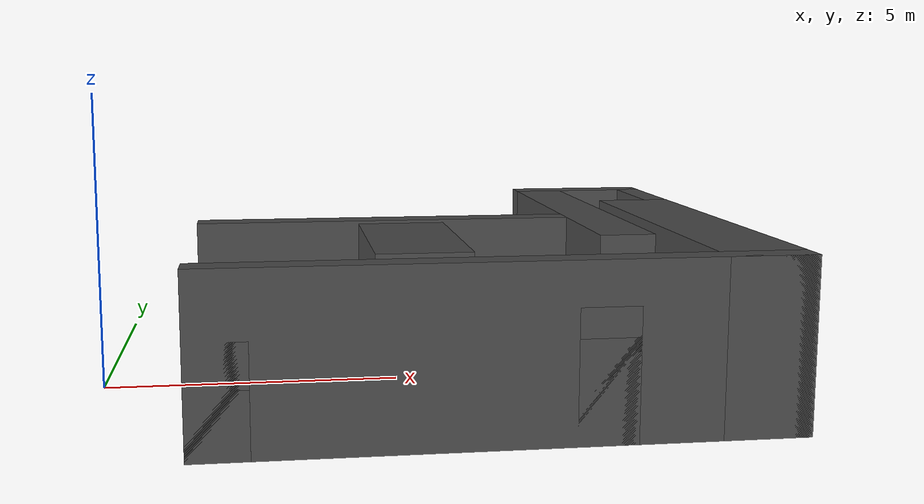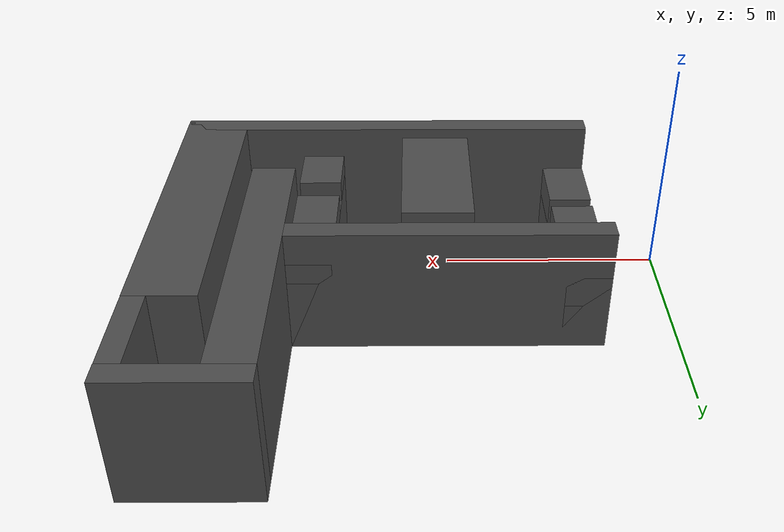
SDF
<?xml version='1.0' encoding='UTF-8'?>
<sdf version="1.7">
  <model name="folding_drone_obstacle2">
    <static>true</static>
    <link name="top_wall_0">
      <pose>2.0 0.0 1.9375 0 0 0</pose>
      <collision name="top_wall_0_collision">
        <geometry>
          <box>
            <size>1.0 5.36 1.125</size>
          </box>
        </geometry>
      </collision>
    </link>
    <link name="bottom_wall_0">
      <pose>2.0 0.0 0.0625 0 0 0</pose>
      <collision name="bottom_wall_0_collision">
        <geometry>
          <box>
            <size>1.0 5.36 1.125</size>
          </box>
        </geometry>
      </collision>
      <visual name="bottom_wall_0_visual">
        <geometry>
          <box>
            <size>1.0 5.36 1.125</size>
          </box>
        </geometry>
        <material>
          <ambient>0.3 0.3 0.3 1</ambient>
          <diffuse>0.3 0.3 0.3 1</diffuse>
        </material>
      </visual>
    </link>
    <link name="left_wall_0">
      <pose>2.0 -1.6500000000000001 1.0 0 0 0</pose>
      <collision name="left_wall_0_collision">
        <geometry>
          <box>
            <size>1.0 2.06 0.75</size>
          </box>
        </geometry>
      </collision>
      <visual name="left_wall_0_visual">
        <geometry>
          <box>
            <size>1.0 2.06 0.75</size>
          </box>
        </geometry>
        <material>
          <ambient>0.3 0.3 0.3 1</ambient>
          <diffuse>0.3 0.3 0.3 1</diffuse>
        </material>
      </visual>
    </link>
    <link name="right_wall_0">
      <pose>2.0 1.1800000000000002 1.0 0 0 0</pose>
      <collision name="right_wall_0_collision">
        <geometry>
          <box>
            <size>1.0 3.0 0.75</size>
          </box>
        </geometry>
      </collision>
      <visual name="right_wall_0_visual">
        <geometry>
          <box>
            <size>1.0 3.0 0.75</size>
          </box>
        </geometry>
        <material>
          <ambient>0.3 0.3 0.3 1</ambient>
          <diffuse>0.3 0.3 0.3 1</diffuse>
        </material>
      </visual>
    </link>
    <link name="solid_wall_1">
      <pose>6.5 -2.43 1.0 0 0 0</pose>
      <collision name="solid_wall_1_collision">
        <geometry>
          <box>
            <size>10.0 0.5 3.0</size>
          </box>
        </geometry>
      </collision>
      <visual name="solid_wall_1_visual">
        <geometry>
          <box>
            <size>10.0 0.5 3.0</size>
          </box>
        </geometry>
        <material>
          <ambient>0.3 0.3 0.3 1</ambient>
          <diffuse>0.3 0.3 0.3 1</diffuse>
        </material>
      </visual>
    </link>
    <link name="solid_wall_2">
      <pose>5.05 2.43 1.0 0 0 0</pose>
      <collision name="solid_wall_2_collision">
        <geometry>
          <box>
            <size>7.1 0.5 3.0</size>
          </box>
        </geometry>
      </collision>
      <visual name="solid_wall_2_visual">
        <geometry>
          <box>
            <size>7.1 0.5 3.0</size>
          </box>
        </geometry>
        <material>
          <ambient>0.3 0.3 0.3 1</ambient>
          <diffuse>0.3 0.3 0.3 1</diffuse>
        </material>
      </visual>
    </link>
    <link name="solid_wall_3">
      <pose>5.3 0.030000000000000027 1.0 0 0 0</pose>
      <collision name="solid_wall_3_collision">
        <geometry>
          <box>
            <size>1.6 3.5 3.0</size>
          </box>
        </geometry>
      </collision>
      <visual name="solid_wall_3_visual">
        <geometry>
          <box>
            <size>1.6 3.5 3.0</size>
          </box>
        </geometry>
        <material>
          <ambient>0.3 0.3 0.3 1</ambient>
          <diffuse>0.3 0.3 0.3 1</diffuse>
        </material>
      </visual>
    </link>
    <link name="top_wall_4">
      <pose>8.1 0.0 2.125 0 0 0</pose>
      <collision name="top_wall_4_collision">
        <geometry>
          <box>
            <size>1.0 5.36 0.75</size>
          </box>
        </geometry>
      </collision>
    </link>
    <link name="bottom_wall_4">
      <pose>8.1 0.0 0.375 0 0 0</pose>
      <collision name="bottom_wall_4_collision">
        <geometry>
          <box>
            <size>1.0 5.36 1.75</size>
          </box>
        </geometry>
      </collision>
      <visual name="bottom_wall_4_visual">
        <geometry>
          <box>
            <size>1.0 5.36 1.75</size>
          </box>
        </geometry>
        <material>
          <ambient>0.3 0.3 0.3 1</ambient>
          <diffuse>0.3 0.3 0.3 1</diffuse>
        </material>
      </visual>
    </link>
    <link name="left_wall_4">
      <pose>8.1 -1.75 1.5 0 0 0</pose>
      <collision name="left_wall_4_collision">
        <geometry>
          <box>
            <size>1.0 1.86 0.5</size>
          </box>
        </geometry>
      </collision>
      <visual name="left_wall_4_visual">
        <geometry>
          <box>
            <size>1.0 1.86 0.5</size>
          </box>
        </geometry>
        <material>
          <ambient>0.3 0.3 0.3 1</ambient>
          <diffuse>0.3 0.3 0.3 1</diffuse>
        </material>
      </visual>
    </link>
    <link name="right_wall_4">
      <pose>8.1 1.2300000000000002 1.5 0 0 0</pose>
      <collision name="right_wall_4_collision">
        <geometry>
          <box>
            <size>1.0 2.9000000000000004 0.5</size>
          </box>
        </geometry>
      </collision>
      <visual name="right_wall_4_visual">
        <geometry>
          <box>
            <size>1.0 2.9000000000000004 0.5</size>
          </box>
        </geometry>
        <material>
          <ambient>0.3 0.3 0.3 1</ambient>
          <diffuse>0.3 0.3 0.3 1</diffuse>
        </material>
      </visual>
    </link>
    <link name="solid_wall_5">
      <pose>10.75 1.05 1.0 0 0 0</pose>
      <collision name="solid_wall_5_collision">
        <geometry>
          <box>
            <size>1.5 7.460000000000001 3.0</size>
          </box>
        </geometry>
      </collision>
      <visual name="solid_wall_5_visual">
        <geometry>
          <box>
            <size>1.5 7.460000000000001 3.0</size>
          </box>
        </geometry>
        <material>
          <ambient>0.3 0.3 0.3 1</ambient>
          <diffuse>0.3 0.3 0.3 1</diffuse>
        </material>
      </visual>
    </link>
    <link name="solid_wall_6">
      <pose>9.1 3.2800000000000002 1.0 0 0 0</pose>
      <collision name="solid_wall_6_collision">
        <geometry>
          <box>
            <size>1.0 7.0 3.0</size>
          </box>
        </geometry>
      </collision>
      <visual name="solid_wall_6_visual">
        <geometry>
          <box>
            <size>1.0 7.0 3.0</size>
          </box>
        </geometry>
        <material>
          <ambient>0.3 0.3 0.3 1</ambient>
          <diffuse>0.3 0.3 0.3 1</diffuse>
        </material>
      </visual>
    </link>
    <link name="solid_wall_7">
      <pose>11.25 6.03 1.0 0 0 0</pose>
      <collision name="solid_wall_7_collision">
        <geometry>
          <box>
            <size>0.49 2.5 3.0</size>
          </box>
        </geometry>
      </collision>
      <visual name="solid_wall_7_visual">
        <geometry>
          <box>
            <size>0.49 2.5 3.0</size>
          </box>
        </geometry>
        <material>
          <ambient>0.3 0.3 0.3 1</ambient>
          <diffuse>0.3 0.3 0.3 1</diffuse>
        </material>
      </visual>
    </link>
    <link name="solid_wall_8">
      <pose>10.05 7.03 1.0 0 0 0</pose>
      <collision name="solid_wall_8_collision">
        <geometry>
          <box>
            <size>2.9000000000000004 0.5 3.0</size>
          </box>
        </geometry>
      </collision>
      <visual name="solid_wall_8_visual">
        <geometry>
          <box>
            <size>2.9000000000000004 0.5 3.0</size>
          </box>
        </geometry>
        <material>
          <ambient>0.3 0.3 0.3 1</ambient>
          <diffuse>0.3 0.3 0.3 1</diffuse>
        </material>
      </visual>
    </link>
  </model>
</sdf>
